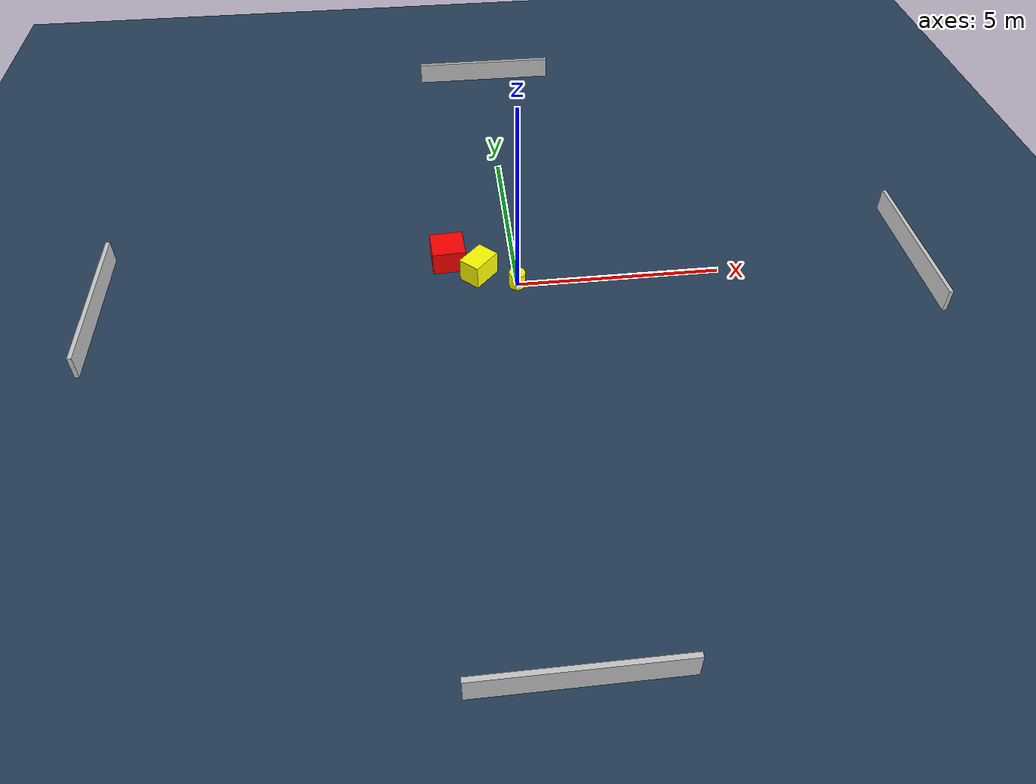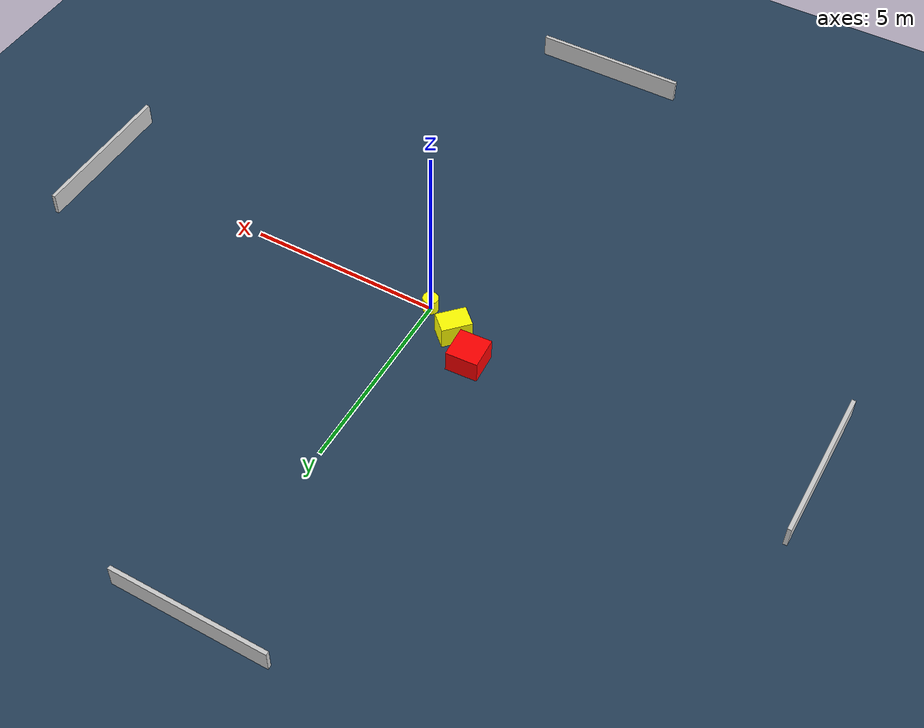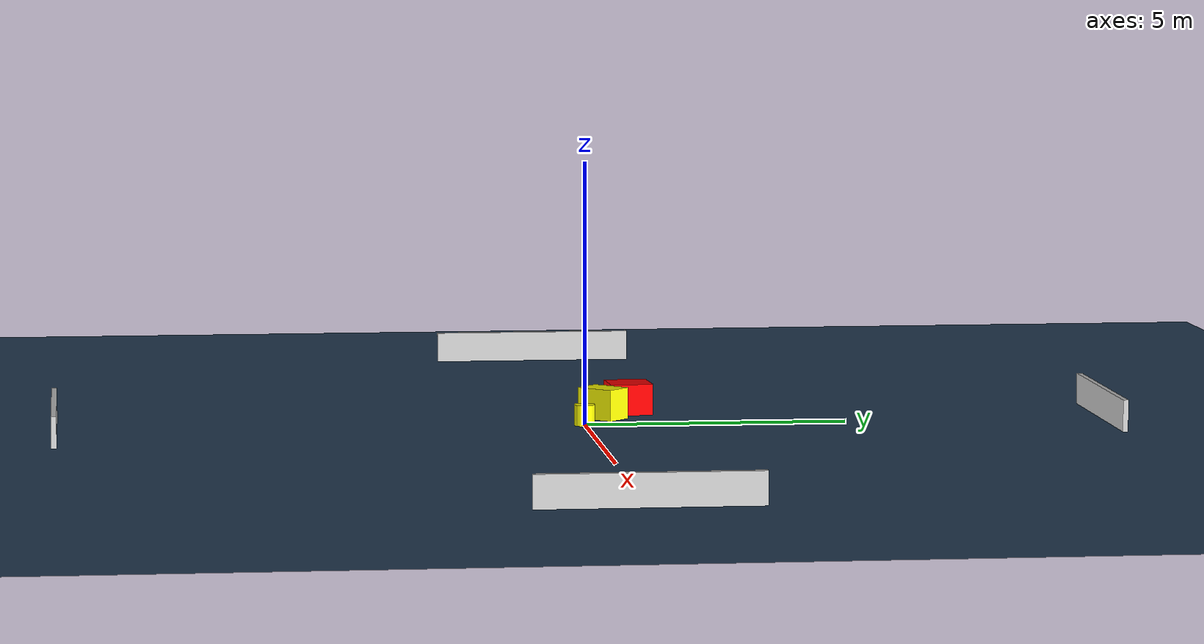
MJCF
<?xml version="1.0" ?>
<mujoco model="generated_environment">
  <option timestep="0.01" integrator="RK4" cone="elliptic"/>
  <default>
    <geom density="1"/>
  </default>
  <asset>
    <texture builtin="gradient" height="3072" name="skybox" rgb1="0.3 0.5 0.7" rgb2="0 0 0" type="skybox" width="512"/>
    <texture builtin="checker" height="300" name="groundplane" rgb1="0.2 0.3 0.4" rgb2="0.1 0.2 0.3" type="2d" width="300"/>
    <material name="groundplane" reflectance="0.2" texrepeat="5 5" texture="groundplane"/>
  </asset>
  <worldbody>
    <light dir="0 0 -1" directional="true" pos="0 0 1.5"/>
    <geom condim="3" friction="0.5 0.005 0.001" material="groundplane" name="floor" pos="0 0 0" size="0 0 0.05" type="plane"/>
    <body name="walls">
      <geom name="wall_1" condim="4" pos="-10.0 0.0 0.3" rgba="0.800000011920929 0.800000011920929 0.800000011920929 1.0" size="0.05 2.0 0.3" type="box"/>
      <geom name="wall_2" condim="4" pos="10.0 0.0 0.3" rgba="0.800000011920929 0.800000011920929 0.800000011920929 1.0" size="0.05 2.0 0.3" type="box"/>
      <geom name="wall_3" condim="4" pos="0.0 -10.0 0.3" rgba="0.800000011920929 0.800000011920929 0.800000011920929 1.0" size="2.0 0.05 0.3" type="box"/>
      <geom name="wall_4" condim="4" pos="0.0 10.0 0.3" rgba="0.800000011920929 0.800000011920929 0.800000011920929 1.0" size="2.0 0.05 0.3" type="box"/>
    </body>
    <body name="robot">
      <joint name="joint_x" type="slide" pos="0 0 0" axis="1 0 0"/>
      <joint name="joint_y" type="slide" pos="0 0 0" axis="0 1 0"/>
      <geom name="robot" type="cylinder" pos="0.0 0.0 0.2" size="0.2 0.2 0.0" mass="5.0" friction="1.0 0.005 0.0001" condim="4" rgba="1.0 1.0 0.0 1.0"/>
    </body>
    <body name="obstacle_1_movable">
      <geom name="obstacle_1_movable" condim="4" pos="-0.9013902446714791 0.45430865268038817 0.3" euler="0 0 316.73626578857875" friction="0.0 0.005 0.001" rgba="1.0 1.0 0.0 1.0" size="0.2780015091096172 0.3887965537995719 0.3" type="box" mass="0.1"/>
      <joint type="free"/>
    </body>
    <body name="obstacle_2_static">
      <geom name="obstacle_2_static" condim="4" pos="-1.6318351210824684 1.0357336478156667 0.3" euler="0 0 3.156624043942573" friction="0.0 0.005 0.001" rgba="1.0 0.0 0.0 1.0" size="0.4105783806326815 0.40862430205241235 0.3" type="box"/>
    </body>
  </worldbody>
  <actuator>
    <motor name="actuator_x" joint="joint_x" gear="1" ctrlrange="-1 1"/>
    <motor name="actuator_y" joint="joint_y" gear="1" ctrlrange="-1 1"/>
  </actuator>
</mujoco>
